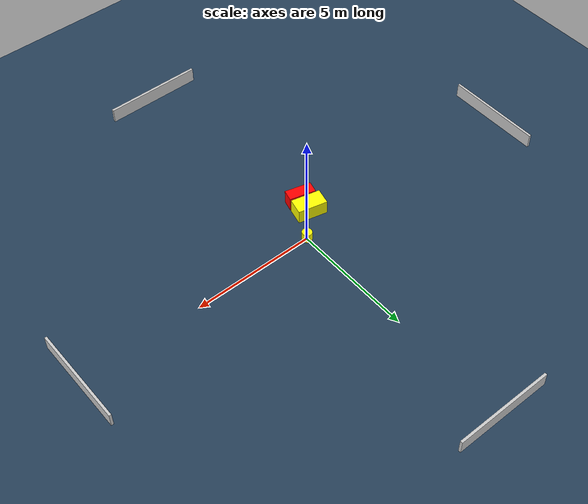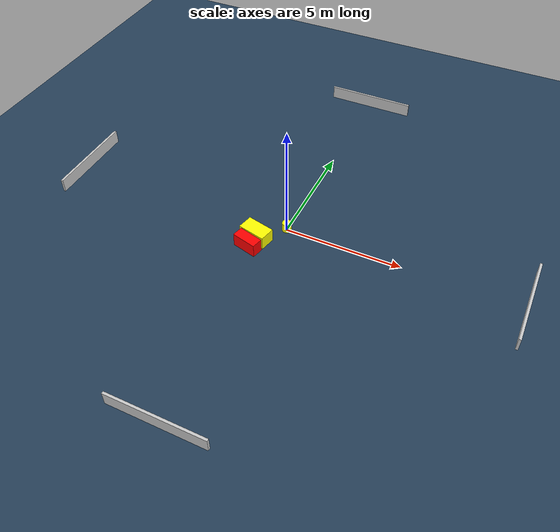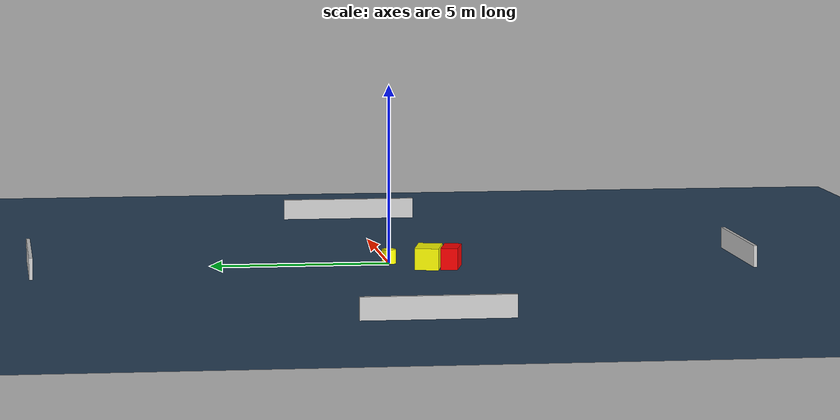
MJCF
<?xml version="1.0" ?>
<mujoco model="generated_environment">
  <option timestep="0.01" integrator="RK4" cone="elliptic"/>
  <default>
    <geom density="1"/>
  </default>
  <asset>
    <texture builtin="gradient" height="3072" name="skybox" rgb1="0.3 0.5 0.7" rgb2="0 0 0" type="skybox" width="512"/>
    <texture builtin="checker" height="300" name="groundplane" rgb1="0.2 0.3 0.4" rgb2="0.1 0.2 0.3" type="2d" width="300"/>
    <material name="groundplane" reflectance="0.2" texrepeat="5 5" texture="groundplane"/>
  </asset>
  <worldbody>
    <light dir="0 0 -1" directional="true" pos="0 0 1.5"/>
    <geom condim="3" friction="0.5 0.005 0.001" material="groundplane" name="floor" pos="0 0 0" size="0 0 0.05" type="plane"/>
    <body name="walls">
      <geom name="wall_1" condim="4" pos="-10.0 0.0 0.3" rgba="0.800000011920929 0.800000011920929 0.800000011920929 1.0" size="0.05 2.0 0.3" type="box"/>
      <geom name="wall_2" condim="4" pos="10.0 0.0 0.3" rgba="0.800000011920929 0.800000011920929 0.800000011920929 1.0" size="0.05 2.0 0.3" type="box"/>
      <geom name="wall_3" condim="4" pos="0.0 -10.0 0.3" rgba="0.800000011920929 0.800000011920929 0.800000011920929 1.0" size="2.0 0.05 0.3" type="box"/>
      <geom name="wall_4" condim="4" pos="0.0 10.0 0.3" rgba="0.800000011920929 0.800000011920929 0.800000011920929 1.0" size="2.0 0.05 0.3" type="box"/>
    </body>
    <body name="robot">
      <joint name="joint_x" type="slide" pos="0 0 0" axis="1 0 0"/>
      <joint name="joint_y" type="slide" pos="0 0 0" axis="0 1 0"/>
      <geom name="robot" type="cylinder" pos="0.0 0.0 0.2" size="0.2 0.2 0.0" mass="5.0" friction="1.0 0.005 0.0001" condim="4" rgba="1.0 1.0 0.0 1.0"/>
    </body>
    <body name="obstacle_1_movable">
      <geom name="obstacle_1_movable" condim="4" pos="-0.9339736999793784 -0.9912746581064276 0.3" euler="0 0 256.9259243970463" friction="0.0 0.005 0.001" rgba="1.0 1.0 0.0 1.0" size="0.3350563781595276 0.6011513862656404 0.3" type="box" mass="0.1"/>
      <joint type="free"/>
    </body>
    <body name="obstacle_2_static">
      <geom name="obstacle_2_static" condim="4" pos="-1.0123154418749394 -1.6144656466420786 0.3" euler="0 0 345.46051992851" friction="0.0 0.005 0.001" rgba="1.0 0.0 0.0 1.0" size="0.5385598410426466 0.23660570208268 0.3" type="box"/>
    </body>
  </worldbody>
  <actuator>
    <motor name="actuator_x" joint="joint_x" gear="1" ctrlrange="-1 1"/>
    <motor name="actuator_y" joint="joint_y" gear="1" ctrlrange="-1 1"/>
  </actuator>
</mujoco>
